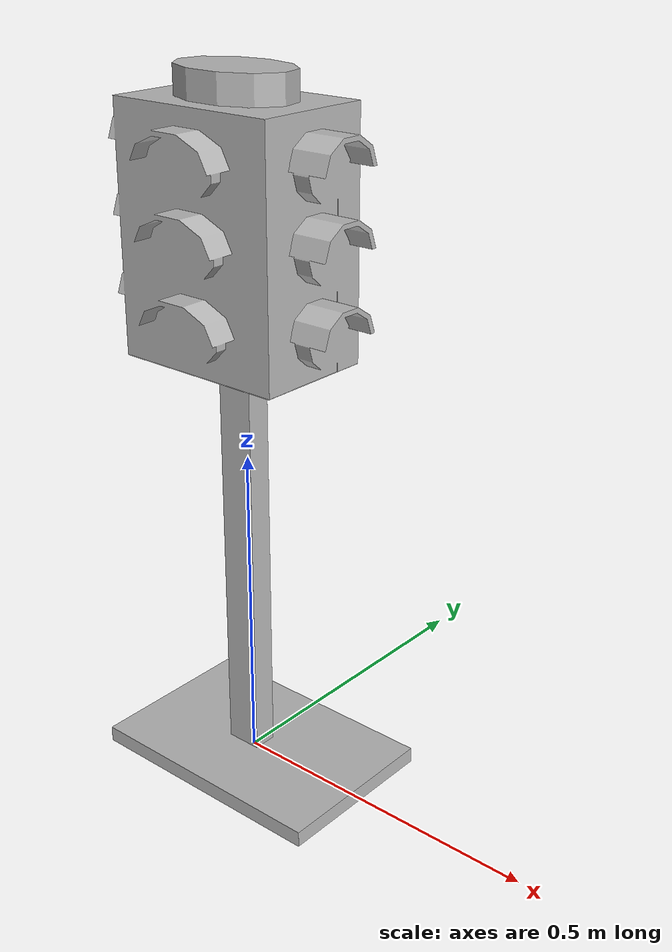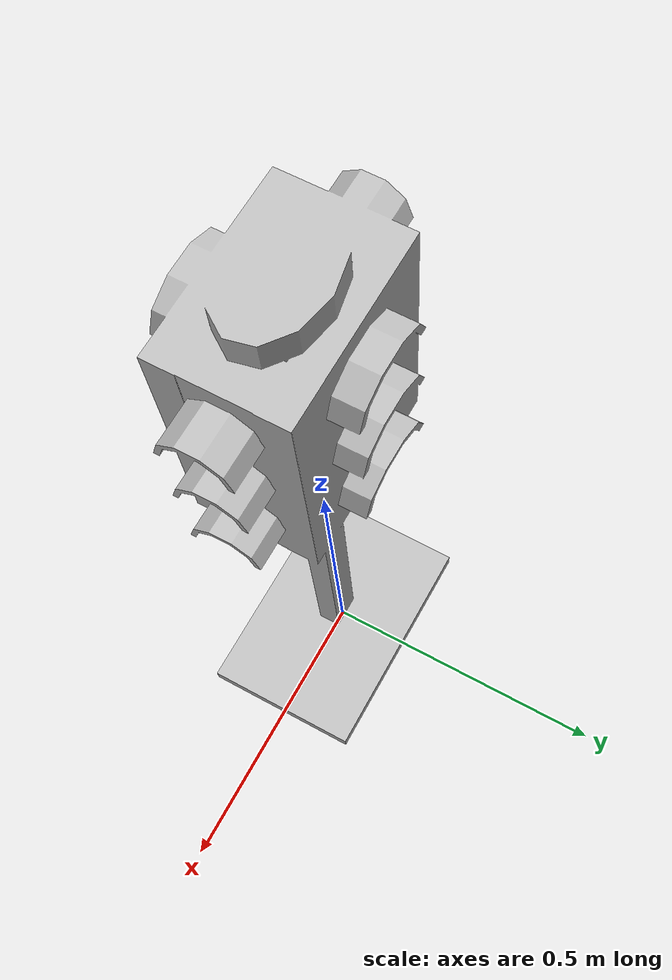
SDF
<?xml version="1.0" ?>
<sdf version="1.6">
  <model name="city_traffic_light">
    <static>true</static>
    <link name="link">
      <collision name="collision">
        <geometry>
          <!-- 底座为方形，暂定尺寸为 x=0.4m, y=0.4m, z=2.0m -->
          <box>
            <size>0.4 0.4 2.0</size>
          </box>
        </geometry>
      </collision>
      <visual name="visual">
        <!-- 绕 X 轴旋转 90 度让它站立 -->
        <pose>0 0 0 1.5708 0 0</pose>
        <geometry>
          <mesh>
            <uri>model://city_traffic_light/meshes/city_traffic_light/result.dae</uri>
            <!-- 缩放比例设为原模型大小的 1% -->
            <scale>0.06 0.04 0.04</scale>
          </mesh>
        </geometry>
      </visual>
    </link>
  </model>
</sdf>
